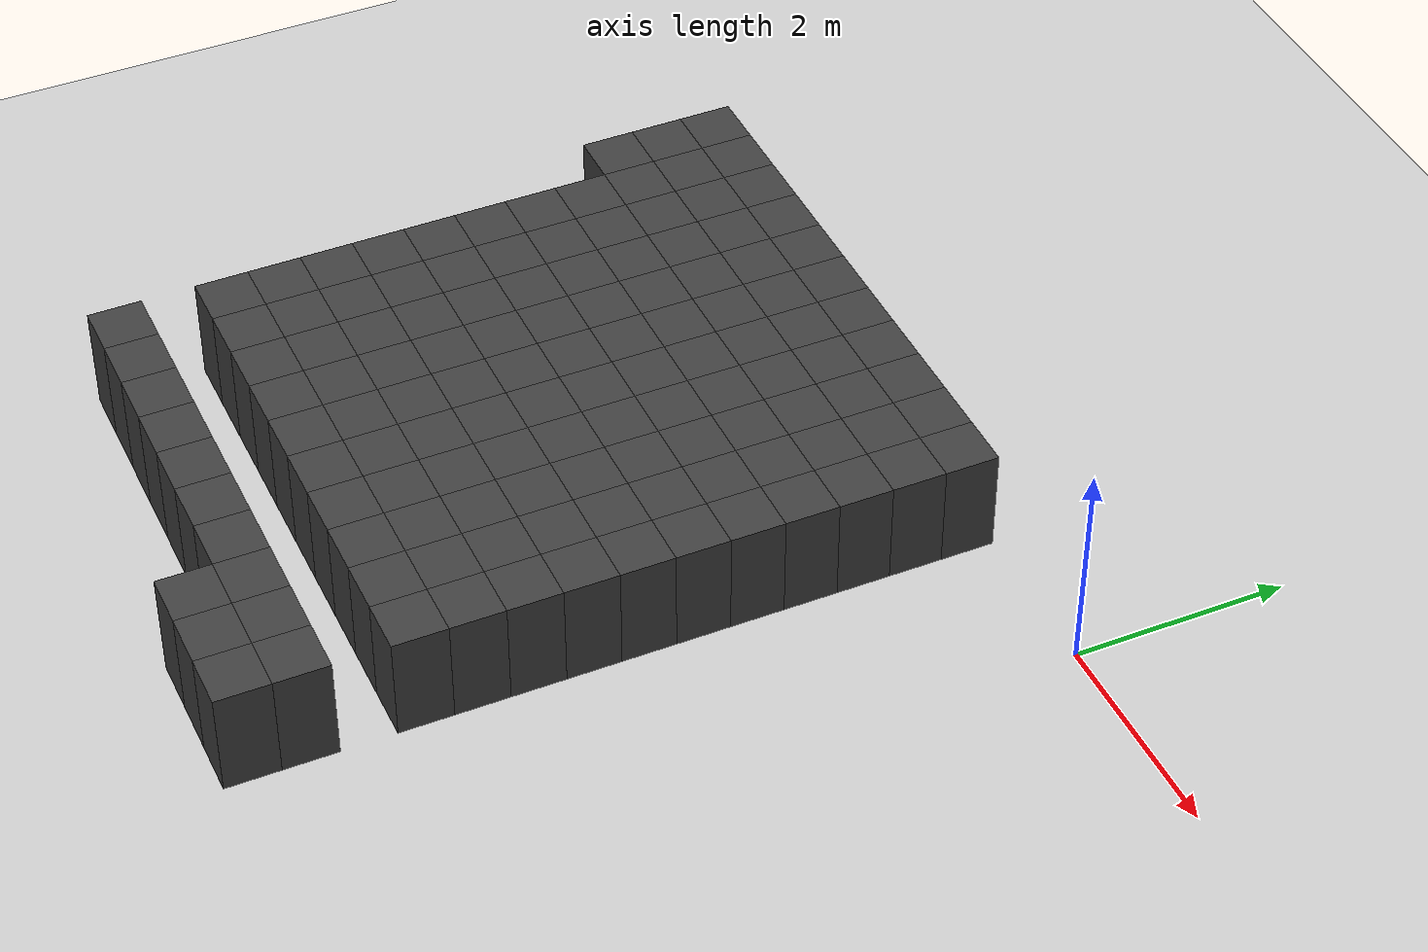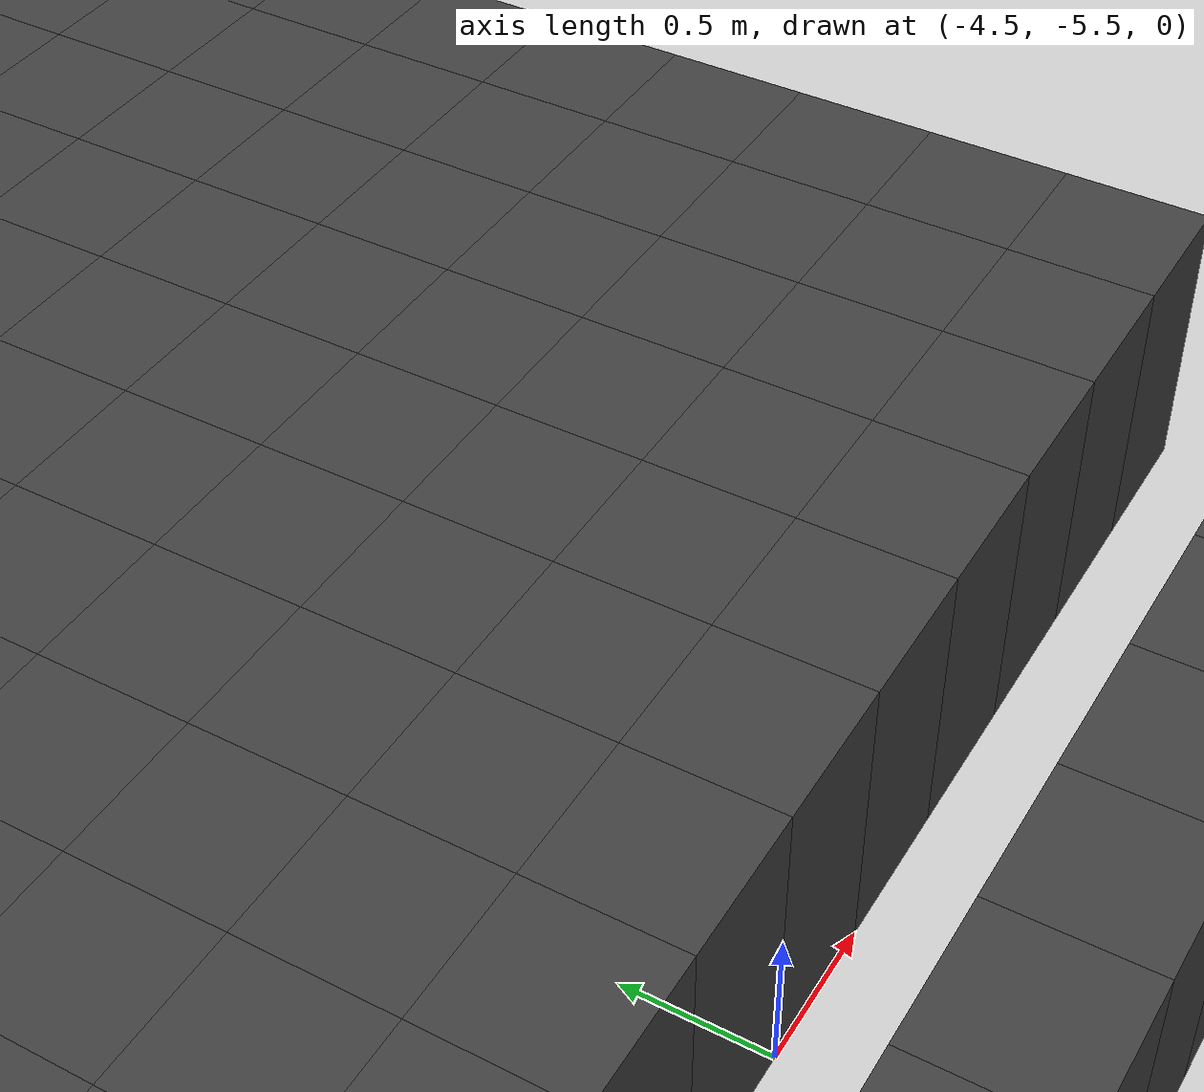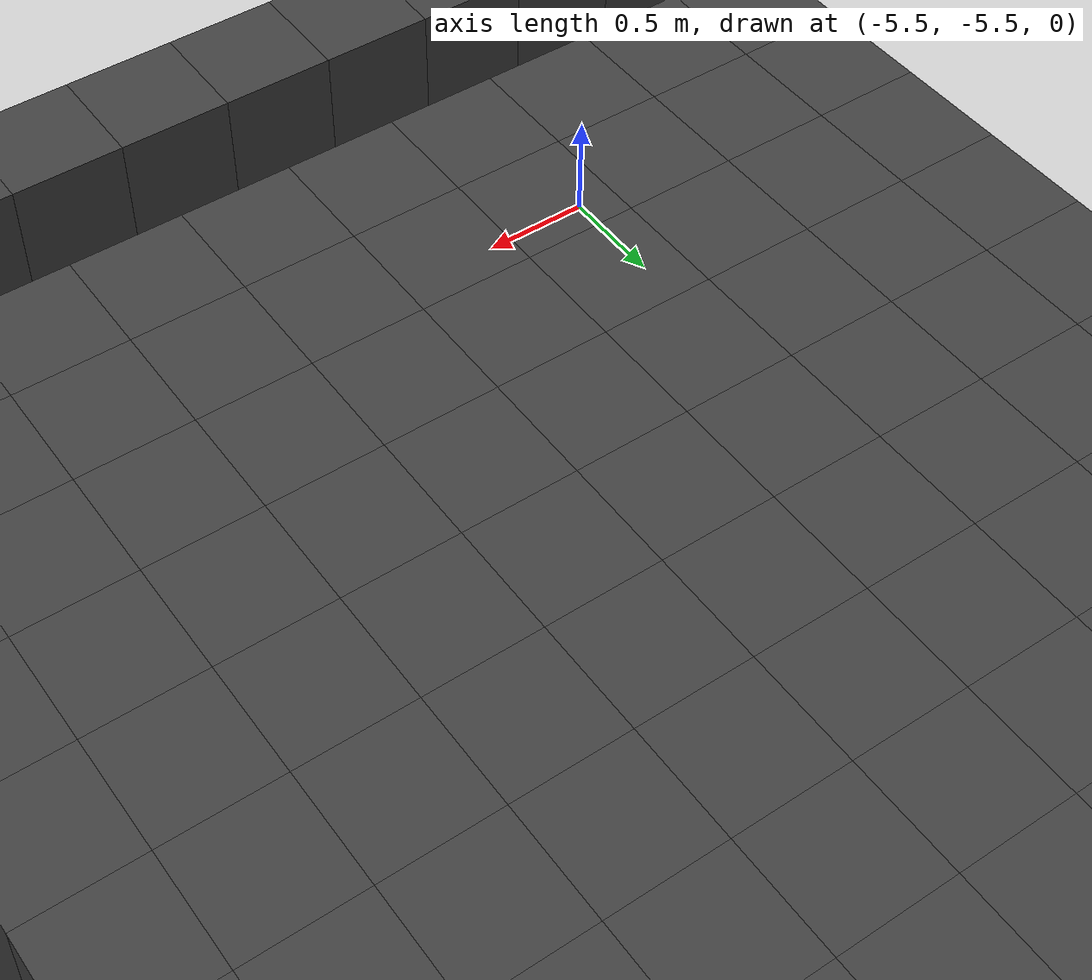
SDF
<sdf version="1.7">
 <world name="map_10777">
  <model name="ground_plane">
   <static>true</static>
   <link name="link">
    <collision name="collision">
     <geometry><plane><normal>0 0 1</normal><size>200 200</size></plane></geometry>
    </collision>
    <visual name="visual">
     <geometry><plane><normal>0 0 1</normal><size>200 200</size></plane></geometry>
     <material><ambient>0.8 0.8 0.8 1</ambient><diffuse>0.8 0.8 0.8 1</diffuse></material>
    </visual>
   </link>
  </model>
  <model name="maze_environment">
   <static>true</static>
   <link name="wall_1139">
    <pose>-6.750 -0.250 0.500 0 0 0</pose>
    <collision name="col"><geometry><box><size>0.5 0.5 1.0</size></box></geometry></collision>
    <visual name="vis">
     <geometry><box><size>0.5 0.5 1.0</size></box></geometry>
     <material><ambient>0.15 0.15 0.15 1</ambient><diffuse>0.25 0.25 0.25 1</diffuse></material>
    </visual>
   </link>
   <link name="wall_1140">
    <pose>-6.250 -0.250 0.500 0 0 0</pose>
    <collision name="col"><geometry><box><size>0.5 0.5 1.0</size></box></geometry></collision>
    <visual name="vis">
     <geometry><box><size>0.5 0.5 1.0</size></box></geometry>
     <material><ambient>0.15 0.15 0.15 1</ambient><diffuse>0.25 0.25 0.25 1</diffuse></material>
    </visual>
   </link>
   <link name="wall_1141">
    <pose>-5.750 -0.250 0.500 0 0 0</pose>
    <collision name="col"><geometry><box><size>0.5 0.5 1.0</size></box></geometry></collision>
    <visual name="vis">
     <geometry><box><size>0.5 0.5 1.0</size></box></geometry>
     <material><ambient>0.15 0.15 0.15 1</ambient><diffuse>0.25 0.25 0.25 1</diffuse></material>
    </visual>
   </link>
   <link name="wall_1142">
    <pose>-5.250 -0.250 0.500 0 0 0</pose>
    <collision name="col"><geometry><box><size>0.5 0.5 1.0</size></box></geometry></collision>
    <visual name="vis">
     <geometry><box><size>0.5 0.5 1.0</size></box></geometry>
     <material><ambient>0.15 0.15 0.15 1</ambient><diffuse>0.25 0.25 0.25 1</diffuse></material>
    </visual>
   </link>
   <link name="wall_1143">
    <pose>-4.750 -0.250 0.500 0 0 0</pose>
    <collision name="col"><geometry><box><size>0.5 0.5 1.0</size></box></geometry></collision>
    <visual name="vis">
     <geometry><box><size>0.5 0.5 1.0</size></box></geometry>
     <material><ambient>0.15 0.15 0.15 1</ambient><diffuse>0.25 0.25 0.25 1</diffuse></material>
    </visual>
   </link>
   <link name="wall_1144">
    <pose>-4.250 -0.250 0.500 0 0 0</pose>
    <collision name="col"><geometry><box><size>0.5 0.5 1.0</size></box></geometry></collision>
    <visual name="vis">
     <geometry><box><size>0.5 0.5 1.0</size></box></geometry>
     <material><ambient>0.15 0.15 0.15 1</ambient><diffuse>0.25 0.25 0.25 1</diffuse></material>
    </visual>
   </link>
   <link name="wall_1145">
    <pose>-3.750 -0.250 0.500 0 0 0</pose>
    <collision name="col"><geometry><box><size>0.5 0.5 1.0</size></box></geometry></collision>
    <visual name="vis">
     <geometry><box><size>0.5 0.5 1.0</size></box></geometry>
     <material><ambient>0.15 0.15 0.15 1</ambient><diffuse>0.25 0.25 0.25 1</diffuse></material>
    </visual>
   </link>
   <link name="wall_1146">
    <pose>-3.250 -0.250 0.500 0 0 0</pose>
    <collision name="col"><geometry><box><size>0.5 0.5 1.0</size></box></geometry></collision>
    <visual name="vis">
     <geometry><box><size>0.5 0.5 1.0</size></box></geometry>
     <material><ambient>0.15 0.15 0.15 1</ambient><diffuse>0.25 0.25 0.25 1</diffuse></material>
    </visual>
   </link>
   <link name="wall_1147">
    <pose>-2.750 -0.250 0.500 0 0 0</pose>
    <collision name="col"><geometry><box><size>0.5 0.5 1.0</size></box></geometry></collision>
    <visual name="vis">
     <geometry><box><size>0.5 0.5 1.0</size></box></geometry>
     <material><ambient>0.15 0.15 0.15 1</ambient><diffuse>0.25 0.25 0.25 1</diffuse></material>
    </visual>
   </link>
   <link name="wall_1148">
    <pose>-2.250 -0.250 0.500 0 0 0</pose>
    <collision name="col"><geometry><box><size>0.5 0.5 1.0</size></box></geometry></collision>
    <visual name="vis">
     <geometry><box><size>0.5 0.5 1.0</size></box></geometry>
     <material><ambient>0.15 0.15 0.15 1</ambient><diffuse>0.25 0.25 0.25 1</diffuse></material>
    </visual>
   </link>
   <link name="wall_1149">
    <pose>-1.750 -0.250 0.500 0 0 0</pose>
    <collision name="col"><geometry><box><size>0.5 0.5 1.0</size></box></geometry></collision>
    <visual name="vis">
     <geometry><box><size>0.5 0.5 1.0</size></box></geometry>
     <material><ambient>0.15 0.15 0.15 1</ambient><diffuse>0.25 0.25 0.25 1</diffuse></material>
    </visual>
   </link>
   <link name="wall_1183">
    <pose>-6.750 -0.750 0.500 0 0 0</pose>
    <collision name="col"><geometry><box><size>0.5 0.5 1.0</size></box></geometry></collision>
    <visual name="vis">
     <geometry><box><size>0.5 0.5 1.0</size></box></geometry>
     <material><ambient>0.15 0.15 0.15 1</ambient><diffuse>0.25 0.25 0.25 1</diffuse></material>
    </visual>
   </link>
   <link name="wall_1184">
    <pose>-6.250 -0.750 0.500 0 0 0</pose>
    <collision name="col"><geometry><box><size>0.5 0.5 1.0</size></box></geometry></collision>
    <visual name="vis">
     <geometry><box><size>0.5 0.5 1.0</size></box></geometry>
     <material><ambient>0.15 0.15 0.15 1</ambient><diffuse>0.25 0.25 0.25 1</diffuse></material>
    </visual>
   </link>
   <link name="wall_1185">
    <pose>-5.750 -0.750 0.500 0 0 0</pose>
    <collision name="col"><geometry><box><size>0.5 0.5 1.0</size></box></geometry></collision>
    <visual name="vis">
     <geometry><box><size>0.5 0.5 1.0</size></box></geometry>
     <material><ambient>0.15 0.15 0.15 1</ambient><diffuse>0.25 0.25 0.25 1</diffuse></material>
    </visual>
   </link>
   <link name="wall_1186">
    <pose>-5.250 -0.750 0.500 0 0 0</pose>
    <collision name="col"><geometry><box><size>0.5 0.5 1.0</size></box></geometry></collision>
    <visual name="vis">
     <geometry><box><size>0.5 0.5 1.0</size></box></geometry>
     <material><ambient>0.15 0.15 0.15 1</ambient><diffuse>0.25 0.25 0.25 1</diffuse></material>
    </visual>
   </link>
   <link name="wall_1187">
    <pose>-4.750 -0.750 0.500 0 0 0</pose>
    <collision name="col"><geometry><box><size>0.5 0.5 1.0</size></box></geometry></collision>
    <visual name="vis">
     <geometry><box><size>0.5 0.5 1.0</size></box></geometry>
     <material><ambient>0.15 0.15 0.15 1</ambient><diffuse>0.25 0.25 0.25 1</diffuse></material>
    </visual>
   </link>
   <link name="wall_1188">
    <pose>-4.250 -0.750 0.500 0 0 0</pose>
    <collision name="col"><geometry><box><size>0.5 0.5 1.0</size></box></geometry></collision>
    <visual name="vis">
     <geometry><box><size>0.5 0.5 1.0</size></box></geometry>
     <material><ambient>0.15 0.15 0.15 1</ambient><diffuse>0.25 0.25 0.25 1</diffuse></material>
    </visual>
   </link>
   <link name="wall_1189">
    <pose>-3.750 -0.750 0.500 0 0 0</pose>
    <collision name="col"><geometry><box><size>0.5 0.5 1.0</size></box></geometry></collision>
    <visual name="vis">
     <geometry><box><size>0.5 0.5 1.0</size></box></geometry>
     <material><ambient>0.15 0.15 0.15 1</ambient><diffuse>0.25 0.25 0.25 1</diffuse></material>
    </visual>
   </link>
   <link name="wall_1190">
    <pose>-3.250 -0.750 0.500 0 0 0</pose>
    <collision name="col"><geometry><box><size>0.5 0.5 1.0</size></box></geometry></collision>
    <visual name="vis">
     <geometry><box><size>0.5 0.5 1.0</size></box></geometry>
     <material><ambient>0.15 0.15 0.15 1</ambient><diffuse>0.25 0.25 0.25 1</diffuse></material>
    </visual>
   </link>
   <link name="wall_1191">
    <pose>-2.750 -0.750 0.500 0 0 0</pose>
    <collision name="col"><geometry><box><size>0.5 0.5 1.0</size></box></geometry></collision>
    <visual name="vis">
     <geometry><box><size>0.5 0.5 1.0</size></box></geometry>
     <material><ambient>0.15 0.15 0.15 1</ambient><diffuse>0.25 0.25 0.25 1</diffuse></material>
    </visual>
   </link>
   <link name="wall_1192">
    <pose>-2.250 -0.750 0.500 0 0 0</pose>
    <collision name="col"><geometry><box><size>0.5 0.5 1.0</size></box></geometry></collision>
    <visual name="vis">
     <geometry><box><size>0.5 0.5 1.0</size></box></geometry>
     <material><ambient>0.15 0.15 0.15 1</ambient><diffuse>0.25 0.25 0.25 1</diffuse></material>
    </visual>
   </link>
   <link name="wall_1193">
    <pose>-1.750 -0.750 0.500 0 0 0</pose>
    <collision name="col"><geometry><box><size>0.5 0.5 1.0</size></box></geometry></collision>
    <visual name="vis">
     <geometry><box><size>0.5 0.5 1.0</size></box></geometry>
     <material><ambient>0.15 0.15 0.15 1</ambient><diffuse>0.25 0.25 0.25 1</diffuse></material>
    </visual>
   </link>
   <link name="wall_1221">
    <pose>-6.750 -1.250 0.500 0 0 0</pose>
    <collision name="col"><geometry><box><size>0.5 0.5 1.0</size></box></geometry></collision>
    <visual name="vis">
     <geometry><box><size>0.5 0.5 1.0</size></box></geometry>
     <material><ambient>0.15 0.15 0.15 1</ambient><diffuse>0.25 0.25 0.25 1</diffuse></material>
    </visual>
   </link>
   <link name="wall_1222">
    <pose>-6.250 -1.250 0.500 0 0 0</pose>
    <collision name="col"><geometry><box><size>0.5 0.5 1.0</size></box></geometry></collision>
    <visual name="vis">
     <geometry><box><size>0.5 0.5 1.0</size></box></geometry>
     <material><ambient>0.15 0.15 0.15 1</ambient><diffuse>0.25 0.25 0.25 1</diffuse></material>
    </visual>
   </link>
   <link name="wall_1223">
    <pose>-5.750 -1.250 0.500 0 0 0</pose>
    <collision name="col"><geometry><box><size>0.5 0.5 1.0</size></box></geometry></collision>
    <visual name="vis">
     <geometry><box><size>0.5 0.5 1.0</size></box></geometry>
     <material><ambient>0.15 0.15 0.15 1</ambient><diffuse>0.25 0.25 0.25 1</diffuse></material>
    </visual>
   </link>
   <link name="wall_1224">
    <pose>-5.250 -1.250 0.500 0 0 0</pose>
    <collision name="col"><geometry><box><size>0.5 0.5 1.0</size></box></geometry></collision>
    <visual name="vis">
     <geometry><box><size>0.5 0.5 1.0</size></box></geometry>
     <material><ambient>0.15 0.15 0.15 1</ambient><diffuse>0.25 0.25 0.25 1</diffuse></material>
    </visual>
   </link>
   <link name="wall_1225">
    <pose>-4.750 -1.250 0.500 0 0 0</pose>
    <collision name="col"><geometry><box><size>0.5 0.5 1.0</size></box></geometry></collision>
    <visual name="vis">
     <geometry><box><size>0.5 0.5 1.0</size></box></geometry>
     <material><ambient>0.15 0.15 0.15 1</ambient><diffuse>0.25 0.25 0.25 1</diffuse></material>
    </visual>
   </link>
   <link name="wall_1226">
    <pose>-4.250 -1.250 0.500 0 0 0</pose>
    <collision name="col"><geometry><box><size>0.5 0.5 1.0</size></box></geometry></collision>
    <visual name="vis">
     <geometry><box><size>0.5 0.5 1.0</size></box></geometry>
     <material><ambient>0.15 0.15 0.15 1</ambient><diffuse>0.25 0.25 0.25 1</diffuse></material>
    </visual>
   </link>
   <link name="wall_1227">
    <pose>-3.750 -1.250 0.500 0 0 0</pose>
    <collision name="col"><geometry><box><size>0.5 0.5 1.0</size></box></geometry></collision>
    <visual name="vis">
     <geometry><box><size>0.5 0.5 1.0</size></box></geometry>
     <material><ambient>0.15 0.15 0.15 1</ambient><diffuse>0.25 0.25 0.25 1</diffuse></material>
    </visual>
   </link>
   <link name="wall_1228">
    <pose>-3.250 -1.250 0.500 0 0 0</pose>
    <collision name="col"><geometry><box><size>0.5 0.5 1.0</size></box></geometry></collision>
    <visual name="vis">
     <geometry><box><size>0.5 0.5 1.0</size></box></geometry>
     <material><ambient>0.15 0.15 0.15 1</ambient><diffuse>0.25 0.25 0.25 1</diffuse></material>
    </visual>
   </link>
   <link name="wall_1229">
    <pose>-2.750 -1.250 0.500 0 0 0</pose>
    <collision name="col"><geometry><box><size>0.5 0.5 1.0</size></box></geometry></collision>
    <visual name="vis">
     <geometry><box><size>0.5 0.5 1.0</size></box></geometry>
     <material><ambient>0.15 0.15 0.15 1</ambient><diffuse>0.25 0.25 0.25 1</diffuse></material>
    </visual>
   </link>
   <link name="wall_1230">
    <pose>-2.250 -1.250 0.500 0 0 0</pose>
    <collision name="col"><geometry><box><size>0.5 0.5 1.0</size></box></geometry></collision>
    <visual name="vis">
     <geometry><box><size>0.5 0.5 1.0</size></box></geometry>
     <material><ambient>0.15 0.15 0.15 1</ambient><diffuse>0.25 0.25 0.25 1</diffuse></material>
    </visual>
   </link>
   <link name="wall_1231">
    <pose>-1.750 -1.250 0.500 0 0 0</pose>
    <collision name="col"><geometry><box><size>0.5 0.5 1.0</size></box></geometry></collision>
    <visual name="vis">
     <geometry><box><size>0.5 0.5 1.0</size></box></geometry>
     <material><ambient>0.15 0.15 0.15 1</ambient><diffuse>0.25 0.25 0.25 1</diffuse></material>
    </visual>
   </link>
   <link name="wall_1265">
    <pose>-6.250 -1.750 0.500 0 0 0</pose>
    <collision name="col"><geometry><box><size>0.5 0.5 1.0</size></box></geometry></collision>
    <visual name="vis">
     <geometry><box><size>0.5 0.5 1.0</size></box></geometry>
     <material><ambient>0.15 0.15 0.15 1</ambient><diffuse>0.25 0.25 0.25 1</diffuse></material>
    </visual>
   </link>
   <link name="wall_1266">
    <pose>-5.750 -1.750 0.500 0 0 0</pose>
    <collision name="col"><geometry><box><size>0.5 0.5 1.0</size></box></geometry></collision>
    <visual name="vis">
     <geometry><box><size>0.5 0.5 1.0</size></box></geometry>
     <material><ambient>0.15 0.15 0.15 1</ambient><diffuse>0.25 0.25 0.25 1</diffuse></material>
    </visual>
   </link>
   <link name="wall_1267">
    <pose>-5.250 -1.750 0.500 0 0 0</pose>
    <collision name="col"><geometry><box><size>0.5 0.5 1.0</size></box></geometry></collision>
    <visual name="vis">
     <geometry><box><size>0.5 0.5 1.0</size></box></geometry>
     <material><ambient>0.15 0.15 0.15 1</ambient><diffuse>0.25 0.25 0.25 1</diffuse></material>
    </visual>
   </link>
   <link name="wall_1268">
    <pose>-4.750 -1.750 0.500 0 0 0</pose>
    <collision name="col"><geometry><box><size>0.5 0.5 1.0</size></box></geometry></collision>
    <visual name="vis">
     <geometry><box><size>0.5 0.5 1.0</size></box></geometry>
     <material><ambient>0.15 0.15 0.15 1</ambient><diffuse>0.25 0.25 0.25 1</diffuse></material>
    </visual>
   </link>
   <link name="wall_1269">
    <pose>-4.250 -1.750 0.500 0 0 0</pose>
    <collision name="col"><geometry><box><size>0.5 0.5 1.0</size></box></geometry></collision>
    <visual name="vis">
     <geometry><box><size>0.5 0.5 1.0</size></box></geometry>
     <material><ambient>0.15 0.15 0.15 1</ambient><diffuse>0.25 0.25 0.25 1</diffuse></material>
    </visual>
   </link>
   <link name="wall_1270">
    <pose>-3.750 -1.750 0.500 0 0 0</pose>
    <collision name="col"><geometry><box><size>0.5 0.5 1.0</size></box></geometry></collision>
    <visual name="vis">
     <geometry><box><size>0.5 0.5 1.0</size></box></geometry>
     <material><ambient>0.15 0.15 0.15 1</ambient><diffuse>0.25 0.25 0.25 1</diffuse></material>
    </visual>
   </link>
   <link name="wall_1271">
    <pose>-3.250 -1.750 0.500 0 0 0</pose>
    <collision name="col"><geometry><box><size>0.5 0.5 1.0</size></box></geometry></collision>
    <visual name="vis">
     <geometry><box><size>0.5 0.5 1.0</size></box></geometry>
     <material><ambient>0.15 0.15 0.15 1</ambient><diffuse>0.25 0.25 0.25 1</diffuse></material>
    </visual>
   </link>
   <link name="wall_1272">
    <pose>-2.750 -1.750 0.500 0 0 0</pose>
    <collision name="col"><geometry><box><size>0.5 0.5 1.0</size></box></geometry></collision>
    <visual name="vis">
     <geometry><box><size>0.5 0.5 1.0</size></box></geometry>
     <material><ambient>0.15 0.15 0.15 1</ambient><diffuse>0.25 0.25 0.25 1</diffuse></material>
    </visual>
   </link>
   <link name="wall_1273">
    <pose>-2.250 -1.750 0.500 0 0 0</pose>
    <collision name="col"><geometry><box><size>0.5 0.5 1.0</size></box></geometry></collision>
    <visual name="vis">
     <geometry><box><size>0.5 0.5 1.0</size></box></geometry>
     <material><ambient>0.15 0.15 0.15 1</ambient><diffuse>0.25 0.25 0.25 1</diffuse></material>
    </visual>
   </link>
   <link name="wall_1274">
    <pose>-1.750 -1.750 0.500 0 0 0</pose>
    <collision name="col"><geometry><box><size>0.5 0.5 1.0</size></box></geometry></collision>
    <visual name="vis">
     <geometry><box><size>0.5 0.5 1.0</size></box></geometry>
     <material><ambient>0.15 0.15 0.15 1</ambient><diffuse>0.25 0.25 0.25 1</diffuse></material>
    </visual>
   </link>
   <link name="wall_1308">
    <pose>-6.250 -2.250 0.500 0 0 0</pose>
    <collision name="col"><geometry><box><size>0.5 0.5 1.0</size></box></geometry></collision>
    <visual name="vis">
     <geometry><box><size>0.5 0.5 1.0</size></box></geometry>
     <material><ambient>0.15 0.15 0.15 1</ambient><diffuse>0.25 0.25 0.25 1</diffuse></material>
    </visual>
   </link>
   <link name="wall_1309">
    <pose>-5.750 -2.250 0.500 0 0 0</pose>
    <collision name="col"><geometry><box><size>0.5 0.5 1.0</size></box></geometry></collision>
    <visual name="vis">
     <geometry><box><size>0.5 0.5 1.0</size></box></geometry>
     <material><ambient>0.15 0.15 0.15 1</ambient><diffuse>0.25 0.25 0.25 1</diffuse></material>
    </visual>
   </link>
   <link name="wall_1310">
    <pose>-5.250 -2.250 0.500 0 0 0</pose>
    <collision name="col"><geometry><box><size>0.5 0.5 1.0</size></box></geometry></collision>
    <visual name="vis">
     <geometry><box><size>0.5 0.5 1.0</size></box></geometry>
     <material><ambient>0.15 0.15 0.15 1</ambient><diffuse>0.25 0.25 0.25 1</diffuse></material>
    </visual>
   </link>
   <link name="wall_1311">
    <pose>-4.750 -2.250 0.500 0 0 0</pose>
    <collision name="col"><geometry><box><size>0.5 0.5 1.0</size></box></geometry></collision>
    <visual name="vis">
     <geometry><box><size>0.5 0.5 1.0</size></box></geometry>
     <material><ambient>0.15 0.15 0.15 1</ambient><diffuse>0.25 0.25 0.25 1</diffuse></material>
    </visual>
   </link>
   <link name="wall_1312">
    <pose>-4.250 -2.250 0.500 0 0 0</pose>
    <collision name="col"><geometry><box><size>0.5 0.5 1.0</size></box></geometry></collision>
    <visual name="vis">
     <geometry><box><size>0.5 0.5 1.0</size></box></geometry>
     <material><ambient>0.15 0.15 0.15 1</ambient><diffuse>0.25 0.25 0.25 1</diffuse></material>
    </visual>
   </link>
   <link name="wall_1313">
    <pose>-3.750 -2.250 0.500 0 0 0</pose>
    <collision name="col"><geometry><box><size>0.5 0.5 1.0</size></box></geometry></collision>
    <visual name="vis">
     <geometry><box><size>0.5 0.5 1.0</size></box></geometry>
     <material><ambient>0.15 0.15 0.15 1</ambient><diffuse>0.25 0.25 0.25 1</diffuse></material>
    </visual>
   </link>
   <link name="wall_1314">
    <pose>-3.250 -2.250 0.500 0 0 0</pose>
    <collision name="col"><geometry><box><size>0.5 0.5 1.0</size></box></geometry></collision>
    <visual name="vis">
     <geometry><box><size>0.5 0.5 1.0</size></box></geometry>
     <material><ambient>0.15 0.15 0.15 1</ambient><diffuse>0.25 0.25 0.25 1</diffuse></material>
    </visual>
   </link>
   <link name="wall_1315">
    <pose>-2.750 -2.250 0.500 0 0 0</pose>
    <collision name="col"><geometry><box><size>0.5 0.5 1.0</size></box></geometry></collision>
    <visual name="vis">
     <geometry><box><size>0.5 0.5 1.0</size></box></geometry>
     <material><ambient>0.15 0.15 0.15 1</ambient><diffuse>0.25 0.25 0.25 1</diffuse></material>
    </visual>
   </link>
   <link name="wall_1316">
    <pose>-2.250 -2.250 0.500 0 0 0</pose>
    <collision name="col"><geometry><box><size>0.5 0.5 1.0</size></box></geometry></collision>
    <visual name="vis">
     <geometry><box><size>0.5 0.5 1.0</size></box></geometry>
     <material><ambient>0.15 0.15 0.15 1</ambient><diffuse>0.25 0.25 0.25 1</diffuse></material>
    </visual>
   </link>
   <link name="wall_1317">
    <pose>-1.750 -2.250 0.500 0 0 0</pose>
    <collision name="col"><geometry><box><size>0.5 0.5 1.0</size></box></geometry></collision>
    <visual name="vis">
     <geometry><box><size>0.5 0.5 1.0</size></box></geometry>
     <material><ambient>0.15 0.15 0.15 1</ambient><diffuse>0.25 0.25 0.25 1</diffuse></material>
    </visual>
   </link>
   <link name="wall_1356">
    <pose>-6.250 -2.750 0.500 0 0 0</pose>
    <collision name="col"><geometry><box><size>0.5 0.5 1.0</size></box></geometry></collision>
    <visual name="vis">
     <geometry><box><size>0.5 0.5 1.0</size></box></geometry>
     <material><ambient>0.15 0.15 0.15 1</ambient><diffuse>0.25 0.25 0.25 1</diffuse></material>
    </visual>
   </link>
   <link name="wall_1357">
    <pose>-5.750 -2.750 0.500 0 0 0</pose>
    <collision name="col"><geometry><box><size>0.5 0.5 1.0</size></box></geometry></collision>
    <visual name="vis">
     <geometry><box><size>0.5 0.5 1.0</size></box></geometry>
     <material><ambient>0.15 0.15 0.15 1</ambient><diffuse>0.25 0.25 0.25 1</diffuse></material>
    </visual>
   </link>
   <link name="wall_1358">
    <pose>-5.250 -2.750 0.500 0 0 0</pose>
    <collision name="col"><geometry><box><size>0.5 0.5 1.0</size></box></geometry></collision>
    <visual name="vis">
     <geometry><box><size>0.5 0.5 1.0</size></box></geometry>
     <material><ambient>0.15 0.15 0.15 1</ambient><diffuse>0.25 0.25 0.25 1</diffuse></material>
    </visual>
   </link>
   <link name="wall_1359">
    <pose>-4.750 -2.750 0.500 0 0 0</pose>
    <collision name="col"><geometry><box><size>0.5 0.5 1.0</size></box></geometry></collision>
    <visual name="vis">
     <geometry><box><size>0.5 0.5 1.0</size></box></geometry>
     <material><ambient>0.15 0.15 0.15 1</ambient><diffuse>0.25 0.25 0.25 1</diffuse></material>
    </visual>
   </link>
   <link name="wall_1360">
    <pose>-4.250 -2.750 0.500 0 0 0</pose>
    <collision name="col"><geometry><box><size>0.5 0.5 1.0</size></box></geometry></collision>
    <visual name="vis">
     <geometry><box><size>0.5 0.5 1.0</size></box></geometry>
     <material><ambient>0.15 0.15 0.15 1</ambient><diffuse>0.25 0.25 0.25 1</diffuse></material>
    </visual>
   </link>
   <link name="wall_1361">
    <pose>-3.750 -2.750 0.500 0 0 0</pose>
    <collision name="col"><geometry><box><size>0.5 0.5 1.0</size></box></geometry></collision>
    <visual name="vis">
     <geometry><box><size>0.5 0.5 1.0</size></box></geometry>
     <material><ambient>0.15 0.15 0.15 1</ambient><diffuse>0.25 0.25 0.25 1</diffuse></material>
    </visual>
   </link>
   <link name="wall_1362">
    <pose>-3.250 -2.750 0.500 0 0 0</pose>
    <collision name="col"><geometry><box><size>0.5 0.5 1.0</size></box></geometry></collision>
    <visual name="vis">
     <geometry><box><size>0.5 0.5 1.0</size></box></geometry>
     <material><ambient>0.15 0.15 0.15 1</ambient><diffuse>0.25 0.25 0.25 1</diffuse></material>
    </visual>
   </link>
   <link name="wall_1363">
    <pose>-2.750 -2.750 0.500 0 0 0</pose>
    <collision name="col"><geometry><box><size>0.5 0.5 1.0</size></box></geometry></collision>
    <visual name="vis">
     <geometry><box><size>0.5 0.5 1.0</size></box></geometry>
     <material><ambient>0.15 0.15 0.15 1</ambient><diffuse>0.25 0.25 0.25 1</diffuse></material>
    </visual>
   </link>
   <link name="wall_1364">
    <pose>-2.250 -2.750 0.500 0 0 0</pose>
    <collision name="col"><geometry><box><size>0.5 0.5 1.0</size></box></geometry></collision>
    <visual name="vis">
     <geometry><box><size>0.5 0.5 1.0</size></box></geometry>
     <material><ambient>0.15 0.15 0.15 1</ambient><diffuse>0.25 0.25 0.25 1</diffuse></material>
    </visual>
   </link>
   <link name="wall_1365">
    <pose>-1.750 -2.750 0.500 0 0 0</pose>
    <collision name="col"><geometry><box><size>0.5 0.5 1.0</size></box></geometry></collision>
    <visual name="vis">
     <geometry><box><size>0.5 0.5 1.0</size></box></geometry>
     <material><ambient>0.15 0.15 0.15 1</ambient><diffuse>0.25 0.25 0.25 1</diffuse></material>
    </visual>
   </link>
   <link name="wall_1404">
    <pose>-6.250 -3.250 0.500 0 0 0</pose>
    <collision name="col"><geometry><box><size>0.5 0.5 1.0</size></box></geometry></collision>
    <visual name="vis">
     <geometry><box><size>0.5 0.5 1.0</size></box></geometry>
     <material><ambient>0.15 0.15 0.15 1</ambient><diffuse>0.25 0.25 0.25 1</diffuse></material>
    </visual>
   </link>
   <link name="wall_1405">
    <pose>-5.750 -3.250 0.500 0 0 0</pose>
    <collision name="col"><geometry><box><size>0.5 0.5 1.0</size></box></geometry></collision>
    <visual name="vis">
     <geometry><box><size>0.5 0.5 1.0</size></box></geometry>
     <material><ambient>0.15 0.15 0.15 1</ambient><diffuse>0.25 0.25 0.25 1</diffuse></material>
    </visual>
   </link>
   <link name="wall_1406">
    <pose>-5.250 -3.250 0.500 0 0 0</pose>
    <collision name="col"><geometry><box><size>0.5 0.5 1.0</size></box></geometry></collision>
    <visual name="vis">
     <geometry><box><size>0.5 0.5 1.0</size></box></geometry>
     <material><ambient>0.15 0.15 0.15 1</ambient><diffuse>0.25 0.25 0.25 1</diffuse></material>
    </visual>
   </link>
   <link name="wall_1407">
    <pose>-4.750 -3.250 0.500 0 0 0</pose>
    <collision name="col"><geometry><box><size>0.5 0.5 1.0</size></box></geometry></collision>
    <visual name="vis">
     <geometry><box><size>0.5 0.5 1.0</size></box></geometry>
     <material><ambient>0.15 0.15 0.15 1</ambient><diffuse>0.25 0.25 0.25 1</diffuse></material>
    </visual>
   </link>
   <link name="wall_1408">
    <pose>-4.250 -3.250 0.500 0 0 0</pose>
    <collision name="col"><geometry><box><size>0.5 0.5 1.0</size></box></geometry></collision>
    <visual name="vis">
     <geometry><box><size>0.5 0.5 1.0</size></box></geometry>
     <material><ambient>0.15 0.15 0.15 1</ambient><diffuse>0.25 0.25 0.25 1</diffuse></material>
    </visual>
   </link>
   <link name="wall_1409">
    <pose>-3.750 -3.250 0.500 0 0 0</pose>
    <collision name="col"><geometry><box><size>0.5 0.5 1.0</size></box></geometry></collision>
    <visual name="vis">
     <geometry><box><size>0.5 0.5 1.0</size></box></geometry>
     <material><ambient>0.15 0.15 0.15 1</ambient><diffuse>0.25 0.25 0.25 1</diffuse></material>
    </visual>
   </link>
   <link name="wall_1410">
    <pose>-3.250 -3.250 0.500 0 0 0</pose>
    <collision name="col"><geometry><box><size>0.5 0.5 1.0</size></box></geometry></collision>
    <visual name="vis">
     <geometry><box><size>0.5 0.5 1.0</size></box></geometry>
     <material><ambient>0.15 0.15 0.15 1</ambient><diffuse>0.25 0.25 0.25 1</diffuse></material>
    </visual>
   </link>
   <link name="wall_1411">
    <pose>-2.750 -3.250 0.500 0 0 0</pose>
    <collision name="col"><geometry><box><size>0.5 0.5 1.0</size></box></geometry></collision>
    <visual name="vis">
     <geometry><box><size>0.5 0.5 1.0</size></box></geometry>
     <material><ambient>0.15 0.15 0.15 1</ambient><diffuse>0.25 0.25 0.25 1</diffuse></material>
    </visual>
   </link>
   <link name="wall_1412">
    <pose>-2.250 -3.250 0.500 0 0 0</pose>
    <collision name="col"><geometry><box><size>0.5 0.5 1.0</size></box></geometry></collision>
    <visual name="vis">
     <geometry><box><size>0.5 0.5 1.0</size></box></geometry>
     <material><ambient>0.15 0.15 0.15 1</ambient><diffuse>0.25 0.25 0.25 1</diffuse></material>
    </visual>
   </link>
   <link name="wall_1413">
    <pose>-1.750 -3.250 0.500 0 0 0</pose>
    <collision name="col"><geometry><box><size>0.5 0.5 1.0</size></box></geometry></collision>
    <visual name="vis">
     <geometry><box><size>0.5 0.5 1.0</size></box></geometry>
     <material><ambient>0.15 0.15 0.15 1</ambient><diffuse>0.25 0.25 0.25 1</diffuse></material>
    </visual>
   </link>
   <link name="wall_1452">
    <pose>-6.250 -3.750 0.500 0 0 0</pose>
    <collision name="col"><geometry><box><size>0.5 0.5 1.0</size></box></geometry></collision>
    <visual name="vis">
     <geometry><box><size>0.5 0.5 1.0</size></box></geometry>
     <material><ambient>0.15 0.15 0.15 1</ambient><diffuse>0.25 0.25 0.25 1</diffuse></material>
    </visual>
   </link>
   <link name="wall_1453">
    <pose>-5.750 -3.750 0.500 0 0 0</pose>
    <collision name="col"><geometry><box><size>0.5 0.5 1.0</size></box></geometry></collision>
    <visual name="vis">
     <geometry><box><size>0.5 0.5 1.0</size></box></geometry>
     <material><ambient>0.15 0.15 0.15 1</ambient><diffuse>0.25 0.25 0.25 1</diffuse></material>
    </visual>
   </link>
   <link name="wall_1454">
    <pose>-5.250 -3.750 0.500 0 0 0</pose>
    <collision name="col"><geometry><box><size>0.5 0.5 1.0</size></box></geometry></collision>
    <visual name="vis">
     <geometry><box><size>0.5 0.5 1.0</size></box></geometry>
     <material><ambient>0.15 0.15 0.15 1</ambient><diffuse>0.25 0.25 0.25 1</diffuse></material>
    </visual>
   </link>
   <link name="wall_1455">
    <pose>-4.750 -3.750 0.500 0 0 0</pose>
    <collision name="col"><geometry><box><size>0.5 0.5 1.0</size></box></geometry></collision>
    <visual name="vis">
     <geometry><box><size>0.5 0.5 1.0</size></box></geometry>
     <material><ambient>0.15 0.15 0.15 1</ambient><diffuse>0.25 0.25 0.25 1</diffuse></material>
    </visual>
   </link>
   <link name="wall_1456">
    <pose>-4.250 -3.750 0.500 0 0 0</pose>
    <collision name="col"><geometry><box><size>0.5 0.5 1.0</size></box></geometry></collision>
    <visual name="vis">
     <geometry><box><size>0.5 0.5 1.0</size></box></geometry>
     <material><ambient>0.15 0.15 0.15 1</ambient><diffuse>0.25 0.25 0.25 1</diffuse></material>
    </visual>
   </link>
   <link name="wall_1457">
    <pose>-3.750 -3.750 0.500 0 0 0</pose>
    <collision name="col"><geometry><box><size>0.5 0.5 1.0</size></box></geometry></collision>
    <visual name="vis">
     <geometry><box><size>0.5 0.5 1.0</size></box></geometry>
     <material><ambient>0.15 0.15 0.15 1</ambient><diffuse>0.25 0.25 0.25 1</diffuse></material>
    </visual>
   </link>
   <link name="wall_1458">
    <pose>-3.250 -3.750 0.500 0 0 0</pose>
    <collision name="col"><geometry><box><size>0.5 0.5 1.0</size></box></geometry></collision>
    <visual name="vis">
     <geometry><box><size>0.5 0.5 1.0</size></box></geometry>
     <material><ambient>0.15 0.15 0.15 1</ambient><diffuse>0.25 0.25 0.25 1</diffuse></material>
    </visual>
   </link>
   <link name="wall_1459">
    <pose>-2.750 -3.750 0.500 0 0 0</pose>
    <collision name="col"><geometry><box><size>0.5 0.5 1.0</size></box></geometry></collision>
    <visual name="vis">
     <geometry><box><size>0.5 0.5 1.0</size></box></geometry>
     <material><ambient>0.15 0.15 0.15 1</ambient><diffuse>0.25 0.25 0.25 1</diffuse></material>
    </visual>
   </link>
   <link name="wall_1460">
    <pose>-2.250 -3.750 0.500 0 0 0</pose>
    <collision name="col"><geometry><box><size>0.5 0.5 1.0</size></box></geometry></collision>
    <visual name="vis">
     <geometry><box><size>0.5 0.5 1.0</size></box></geometry>
     <material><ambient>0.15 0.15 0.15 1</ambient><diffuse>0.25 0.25 0.25 1</diffuse></material>
    </visual>
   </link>
   <link name="wall_1461">
    <pose>-1.750 -3.750 0.500 0 0 0</pose>
    <collision name="col"><geometry><box><size>0.5 0.5 1.0</size></box></geometry></collision>
    <visual name="vis">
     <geometry><box><size>0.5 0.5 1.0</size></box></geometry>
     <material><ambient>0.15 0.15 0.15 1</ambient><diffuse>0.25 0.25 0.25 1</diffuse></material>
    </visual>
   </link>
   <link name="wall_1491">
    <pose>-6.250 -4.250 0.500 0 0 0</pose>
    <collision name="col"><geometry><box><size>0.5 0.5 1.0</size></box></geometry></collision>
    <visual name="vis">
     <geometry><box><size>0.5 0.5 1.0</size></box></geometry>
     <material><ambient>0.15 0.15 0.15 1</ambient><diffuse>0.25 0.25 0.25 1</diffuse></material>
    </visual>
   </link>
   <link name="wall_1492">
    <pose>-5.750 -4.250 0.500 0 0 0</pose>
    <collision name="col"><geometry><box><size>0.5 0.5 1.0</size></box></geometry></collision>
    <visual name="vis">
     <geometry><box><size>0.5 0.5 1.0</size></box></geometry>
     <material><ambient>0.15 0.15 0.15 1</ambient><diffuse>0.25 0.25 0.25 1</diffuse></material>
    </visual>
   </link>
   <link name="wall_1493">
    <pose>-5.250 -4.250 0.500 0 0 0</pose>
    <collision name="col"><geometry><box><size>0.5 0.5 1.0</size></box></geometry></collision>
    <visual name="vis">
     <geometry><box><size>0.5 0.5 1.0</size></box></geometry>
     <material><ambient>0.15 0.15 0.15 1</ambient><diffuse>0.25 0.25 0.25 1</diffuse></material>
    </visual>
   </link>
   <link name="wall_1494">
    <pose>-4.750 -4.250 0.500 0 0 0</pose>
    <collision name="col"><geometry><box><size>0.5 0.5 1.0</size></box></geometry></collision>
    <visual name="vis">
     <geometry><box><size>0.5 0.5 1.0</size></box></geometry>
     <material><ambient>0.15 0.15 0.15 1</ambient><diffuse>0.25 0.25 0.25 1</diffuse></material>
    </visual>
   </link>
   <link name="wall_1495">
    <pose>-4.250 -4.250 0.500 0 0 0</pose>
    <collision name="col"><geometry><box><size>0.5 0.5 1.0</size></box></geometry></collision>
    <visual name="vis">
     <geometry><box><size>0.5 0.5 1.0</size></box></geometry>
     <material><ambient>0.15 0.15 0.15 1</ambient><diffuse>0.25 0.25 0.25 1</diffuse></material>
    </visual>
   </link>
   <link name="wall_1496">
    <pose>-3.750 -4.250 0.500 0 0 0</pose>
    <collision name="col"><geometry><box><size>0.5 0.5 1.0</size></box></geometry></collision>
    <visual name="vis">
     <geometry><box><size>0.5 0.5 1.0</size></box></geometry>
     <material><ambient>0.15 0.15 0.15 1</ambient><diffuse>0.25 0.25 0.25 1</diffuse></material>
    </visual>
   </link>
   <link name="wall_1497">
    <pose>-3.250 -4.250 0.500 0 0 0</pose>
    <collision name="col"><geometry><box><size>0.5 0.5 1.0</size></box></geometry></collision>
    <visual name="vis">
     <geometry><box><size>0.5 0.5 1.0</size></box></geometry>
     <material><ambient>0.15 0.15 0.15 1</ambient><diffuse>0.25 0.25 0.25 1</diffuse></material>
    </visual>
   </link>
   <link name="wall_1498">
    <pose>-2.750 -4.250 0.500 0 0 0</pose>
    <collision name="col"><geometry><box><size>0.5 0.5 1.0</size></box></geometry></collision>
    <visual name="vis">
     <geometry><box><size>0.5 0.5 1.0</size></box></geometry>
     <material><ambient>0.15 0.15 0.15 1</ambient><diffuse>0.25 0.25 0.25 1</diffuse></material>
    </visual>
   </link>
   <link name="wall_1499">
    <pose>-2.250 -4.250 0.500 0 0 0</pose>
    <collision name="col"><geometry><box><size>0.5 0.5 1.0</size></box></geometry></collision>
    <visual name="vis">
     <geometry><box><size>0.5 0.5 1.0</size></box></geometry>
     <material><ambient>0.15 0.15 0.15 1</ambient><diffuse>0.25 0.25 0.25 1</diffuse></material>
    </visual>
   </link>
   <link name="wall_1500">
    <pose>-1.750 -4.250 0.500 0 0 0</pose>
    <collision name="col"><geometry><box><size>0.5 0.5 1.0</size></box></geometry></collision>
    <visual name="vis">
     <geometry><box><size>0.5 0.5 1.0</size></box></geometry>
     <material><ambient>0.15 0.15 0.15 1</ambient><diffuse>0.25 0.25 0.25 1</diffuse></material>
    </visual>
   </link>
   <link name="wall_1530">
    <pose>-6.250 -4.750 0.500 0 0 0</pose>
    <collision name="col"><geometry><box><size>0.5 0.5 1.0</size></box></geometry></collision>
    <visual name="vis">
     <geometry><box><size>0.5 0.5 1.0</size></box></geometry>
     <material><ambient>0.15 0.15 0.15 1</ambient><diffuse>0.25 0.25 0.25 1</diffuse></material>
    </visual>
   </link>
   <link name="wall_1531">
    <pose>-5.750 -4.750 0.500 0 0 0</pose>
    <collision name="col"><geometry><box><size>0.5 0.5 1.0</size></box></geometry></collision>
    <visual name="vis">
     <geometry><box><size>0.5 0.5 1.0</size></box></geometry>
     <material><ambient>0.15 0.15 0.15 1</ambient><diffuse>0.25 0.25 0.25 1</diffuse></material>
    </visual>
   </link>
   <link name="wall_1532">
    <pose>-5.250 -4.750 0.500 0 0 0</pose>
    <collision name="col"><geometry><box><size>0.5 0.5 1.0</size></box></geometry></collision>
    <visual name="vis">
     <geometry><box><size>0.5 0.5 1.0</size></box></geometry>
     <material><ambient>0.15 0.15 0.15 1</ambient><diffuse>0.25 0.25 0.25 1</diffuse></material>
    </visual>
   </link>
   <link name="wall_1533">
    <pose>-4.750 -4.750 0.500 0 0 0</pose>
    <collision name="col"><geometry><box><size>0.5 0.5 1.0</size></box></geometry></collision>
    <visual name="vis">
     <geometry><box><size>0.5 0.5 1.0</size></box></geometry>
     <material><ambient>0.15 0.15 0.15 1</ambient><diffuse>0.25 0.25 0.25 1</diffuse></material>
    </visual>
   </link>
   <link name="wall_1534">
    <pose>-4.250 -4.750 0.500 0 0 0</pose>
    <collision name="col"><geometry><box><size>0.5 0.5 1.0</size></box></geometry></collision>
    <visual name="vis">
     <geometry><box><size>0.5 0.5 1.0</size></box></geometry>
     <material><ambient>0.15 0.15 0.15 1</ambient><diffuse>0.25 0.25 0.25 1</diffuse></material>
    </visual>
   </link>
   <link name="wall_1535">
    <pose>-3.750 -4.750 0.500 0 0 0</pose>
    <collision name="col"><geometry><box><size>0.5 0.5 1.0</size></box></geometry></collision>
    <visual name="vis">
     <geometry><box><size>0.5 0.5 1.0</size></box></geometry>
     <material><ambient>0.15 0.15 0.15 1</ambient><diffuse>0.25 0.25 0.25 1</diffuse></material>
    </visual>
   </link>
   <link name="wall_1536">
    <pose>-3.250 -4.750 0.500 0 0 0</pose>
    <collision name="col"><geometry><box><size>0.5 0.5 1.0</size></box></geometry></collision>
    <visual name="vis">
     <geometry><box><size>0.5 0.5 1.0</size></box></geometry>
     <material><ambient>0.15 0.15 0.15 1</ambient><diffuse>0.25 0.25 0.25 1</diffuse></material>
    </visual>
   </link>
   <link name="wall_1537">
    <pose>-2.750 -4.750 0.500 0 0 0</pose>
    <collision name="col"><geometry><box><size>0.5 0.5 1.0</size></box></geometry></collision>
    <visual name="vis">
     <geometry><box><size>0.5 0.5 1.0</size></box></geometry>
     <material><ambient>0.15 0.15 0.15 1</ambient><diffuse>0.25 0.25 0.25 1</diffuse></material>
    </visual>
   </link>
   <link name="wall_1538">
    <pose>-2.250 -4.750 0.500 0 0 0</pose>
    <collision name="col"><geometry><box><size>0.5 0.5 1.0</size></box></geometry></collision>
    <visual name="vis">
     <geometry><box><size>0.5 0.5 1.0</size></box></geometry>
     <material><ambient>0.15 0.15 0.15 1</ambient><diffuse>0.25 0.25 0.25 1</diffuse></material>
    </visual>
   </link>
   <link name="wall_1539">
    <pose>-1.750 -4.750 0.500 0 0 0</pose>
    <collision name="col"><geometry><box><size>0.5 0.5 1.0</size></box></geometry></collision>
    <visual name="vis">
     <geometry><box><size>0.5 0.5 1.0</size></box></geometry>
     <material><ambient>0.15 0.15 0.15 1</ambient><diffuse>0.25 0.25 0.25 1</diffuse></material>
    </visual>
   </link>
   <link name="wall_1569">
    <pose>-6.250 -5.250 0.500 0 0 0</pose>
    <collision name="col"><geometry><box><size>0.5 0.5 1.0</size></box></geometry></collision>
    <visual name="vis">
     <geometry><box><size>0.5 0.5 1.0</size></box></geometry>
     <material><ambient>0.15 0.15 0.15 1</ambient><diffuse>0.25 0.25 0.25 1</diffuse></material>
    </visual>
   </link>
   <link name="wall_1570">
    <pose>-5.750 -5.250 0.500 0 0 0</pose>
    <collision name="col"><geometry><box><size>0.5 0.5 1.0</size></box></geometry></collision>
    <visual name="vis">
     <geometry><box><size>0.5 0.5 1.0</size></box></geometry>
     <material><ambient>0.15 0.15 0.15 1</ambient><diffuse>0.25 0.25 0.25 1</diffuse></material>
    </visual>
   </link>
   <link name="wall_1571">
    <pose>-5.250 -5.250 0.500 0 0 0</pose>
    <collision name="col"><geometry><box><size>0.5 0.5 1.0</size></box></geometry></collision>
    <visual name="vis">
     <geometry><box><size>0.5 0.5 1.0</size></box></geometry>
     <material><ambient>0.15 0.15 0.15 1</ambient><diffuse>0.25 0.25 0.25 1</diffuse></material>
    </visual>
   </link>
   <link name="wall_1572">
    <pose>-4.750 -5.250 0.500 0 0 0</pose>
    <collision name="col"><geometry><box><size>0.5 0.5 1.0</size></box></geometry></collision>
    <visual name="vis">
     <geometry><box><size>0.5 0.5 1.0</size></box></geometry>
     <material><ambient>0.15 0.15 0.15 1</ambient><diffuse>0.25 0.25 0.25 1</diffuse></material>
    </visual>
   </link>
   <link name="wall_1573">
    <pose>-4.250 -5.250 0.500 0 0 0</pose>
    <collision name="col"><geometry><box><size>0.5 0.5 1.0</size></box></geometry></collision>
    <visual name="vis">
     <geometry><box><size>0.5 0.5 1.0</size></box></geometry>
     <material><ambient>0.15 0.15 0.15 1</ambient><diffuse>0.25 0.25 0.25 1</diffuse></material>
    </visual>
   </link>
   <link name="wall_1574">
    <pose>-3.750 -5.250 0.500 0 0 0</pose>
    <collision name="col"><geometry><box><size>0.5 0.5 1.0</size></box></geometry></collision>
    <visual name="vis">
     <geometry><box><size>0.5 0.5 1.0</size></box></geometry>
     <material><ambient>0.15 0.15 0.15 1</ambient><diffuse>0.25 0.25 0.25 1</diffuse></material>
    </visual>
   </link>
   <link name="wall_1575">
    <pose>-3.250 -5.250 0.500 0 0 0</pose>
    <collision name="col"><geometry><box><size>0.5 0.5 1.0</size></box></geometry></collision>
    <visual name="vis">
     <geometry><box><size>0.5 0.5 1.0</size></box></geometry>
     <material><ambient>0.15 0.15 0.15 1</ambient><diffuse>0.25 0.25 0.25 1</diffuse></material>
    </visual>
   </link>
   <link name="wall_1576">
    <pose>-2.750 -5.250 0.500 0 0 0</pose>
    <collision name="col"><geometry><box><size>0.5 0.5 1.0</size></box></geometry></collision>
    <visual name="vis">
     <geometry><box><size>0.5 0.5 1.0</size></box></geometry>
     <material><ambient>0.15 0.15 0.15 1</ambient><diffuse>0.25 0.25 0.25 1</diffuse></material>
    </visual>
   </link>
   <link name="wall_1577">
    <pose>-2.250 -5.250 0.500 0 0 0</pose>
    <collision name="col"><geometry><box><size>0.5 0.5 1.0</size></box></geometry></collision>
    <visual name="vis">
     <geometry><box><size>0.5 0.5 1.0</size></box></geometry>
     <material><ambient>0.15 0.15 0.15 1</ambient><diffuse>0.25 0.25 0.25 1</diffuse></material>
    </visual>
   </link>
   <link name="wall_1578">
    <pose>-1.750 -5.250 0.500 0 0 0</pose>
    <collision name="col"><geometry><box><size>0.5 0.5 1.0</size></box></geometry></collision>
    <visual name="vis">
     <geometry><box><size>0.5 0.5 1.0</size></box></geometry>
     <material><ambient>0.15 0.15 0.15 1</ambient><diffuse>0.25 0.25 0.25 1</diffuse></material>
    </visual>
   </link>
   <link name="wall_1623">
    <pose>-6.250 -6.250 0.500 0 0 0</pose>
    <collision name="col"><geometry><box><size>0.5 0.5 1.0</size></box></geometry></collision>
    <visual name="vis">
     <geometry><box><size>0.5 0.5 1.0</size></box></geometry>
     <material><ambient>0.15 0.15 0.15 1</ambient><diffuse>0.25 0.25 0.25 1</diffuse></material>
    </visual>
   </link>
   <link name="wall_1624">
    <pose>-5.750 -6.250 0.500 0 0 0</pose>
    <collision name="col"><geometry><box><size>0.5 0.5 1.0</size></box></geometry></collision>
    <visual name="vis">
     <geometry><box><size>0.5 0.5 1.0</size></box></geometry>
     <material><ambient>0.15 0.15 0.15 1</ambient><diffuse>0.25 0.25 0.25 1</diffuse></material>
    </visual>
   </link>
   <link name="wall_1625">
    <pose>-5.250 -6.250 0.500 0 0 0</pose>
    <collision name="col"><geometry><box><size>0.5 0.5 1.0</size></box></geometry></collision>
    <visual name="vis">
     <geometry><box><size>0.5 0.5 1.0</size></box></geometry>
     <material><ambient>0.15 0.15 0.15 1</ambient><diffuse>0.25 0.25 0.25 1</diffuse></material>
    </visual>
   </link>
   <link name="wall_1626">
    <pose>-4.750 -6.250 0.500 0 0 0</pose>
    <collision name="col"><geometry><box><size>0.5 0.5 1.0</size></box></geometry></collision>
    <visual name="vis">
     <geometry><box><size>0.5 0.5 1.0</size></box></geometry>
     <material><ambient>0.15 0.15 0.15 1</ambient><diffuse>0.25 0.25 0.25 1</diffuse></material>
    </visual>
   </link>
   <link name="wall_1627">
    <pose>-4.250 -6.250 0.500 0 0 0</pose>
    <collision name="col"><geometry><box><size>0.5 0.5 1.0</size></box></geometry></collision>
    <visual name="vis">
     <geometry><box><size>0.5 0.5 1.0</size></box></geometry>
     <material><ambient>0.15 0.15 0.15 1</ambient><diffuse>0.25 0.25 0.25 1</diffuse></material>
    </visual>
   </link>
   <link name="wall_1628">
    <pose>-3.750 -6.250 0.500 0 0 0</pose>
    <collision name="col"><geometry><box><size>0.5 0.5 1.0</size></box></geometry></collision>
    <visual name="vis">
     <geometry><box><size>0.5 0.5 1.0</size></box></geometry>
     <material><ambient>0.15 0.15 0.15 1</ambient><diffuse>0.25 0.25 0.25 1</diffuse></material>
    </visual>
   </link>
   <link name="wall_1629">
    <pose>-3.250 -6.250 0.500 0 0 0</pose>
    <collision name="col"><geometry><box><size>0.5 0.5 1.0</size></box></geometry></collision>
    <visual name="vis">
     <geometry><box><size>0.5 0.5 1.0</size></box></geometry>
     <material><ambient>0.15 0.15 0.15 1</ambient><diffuse>0.25 0.25 0.25 1</diffuse></material>
    </visual>
   </link>
   <link name="wall_1630">
    <pose>-2.750 -6.250 0.500 0 0 0</pose>
    <collision name="col"><geometry><box><size>0.5 0.5 1.0</size></box></geometry></collision>
    <visual name="vis">
     <geometry><box><size>0.5 0.5 1.0</size></box></geometry>
     <material><ambient>0.15 0.15 0.15 1</ambient><diffuse>0.25 0.25 0.25 1</diffuse></material>
    </visual>
   </link>
   <link name="wall_1631">
    <pose>-2.250 -6.250 0.500 0 0 0</pose>
    <collision name="col"><geometry><box><size>0.5 0.5 1.0</size></box></geometry></collision>
    <visual name="vis">
     <geometry><box><size>0.5 0.5 1.0</size></box></geometry>
     <material><ambient>0.15 0.15 0.15 1</ambient><diffuse>0.25 0.25 0.25 1</diffuse></material>
    </visual>
   </link>
   <link name="wall_1632">
    <pose>-1.750 -6.250 0.500 0 0 0</pose>
    <collision name="col"><geometry><box><size>0.5 0.5 1.0</size></box></geometry></collision>
    <visual name="vis">
     <geometry><box><size>0.5 0.5 1.0</size></box></geometry>
     <material><ambient>0.15 0.15 0.15 1</ambient><diffuse>0.25 0.25 0.25 1</diffuse></material>
    </visual>
   </link>
   <link name="wall_1669">
    <pose>-2.750 -6.750 0.500 0 0 0</pose>
    <collision name="col"><geometry><box><size>0.5 0.5 1.0</size></box></geometry></collision>
    <visual name="vis">
     <geometry><box><size>0.5 0.5 1.0</size></box></geometry>
     <material><ambient>0.15 0.15 0.15 1</ambient><diffuse>0.25 0.25 0.25 1</diffuse></material>
    </visual>
   </link>
   <link name="wall_1670">
    <pose>-2.250 -6.750 0.500 0 0 0</pose>
    <collision name="col"><geometry><box><size>0.5 0.5 1.0</size></box></geometry></collision>
    <visual name="vis">
     <geometry><box><size>0.5 0.5 1.0</size></box></geometry>
     <material><ambient>0.15 0.15 0.15 1</ambient><diffuse>0.25 0.25 0.25 1</diffuse></material>
    </visual>
   </link>
   <link name="wall_1671">
    <pose>-1.750 -6.750 0.500 0 0 0</pose>
    <collision name="col"><geometry><box><size>0.5 0.5 1.0</size></box></geometry></collision>
    <visual name="vis">
     <geometry><box><size>0.5 0.5 1.0</size></box></geometry>
     <material><ambient>0.15 0.15 0.15 1</ambient><diffuse>0.25 0.25 0.25 1</diffuse></material>
    </visual>
   </link>
  </model>
 </world>
</sdf>
